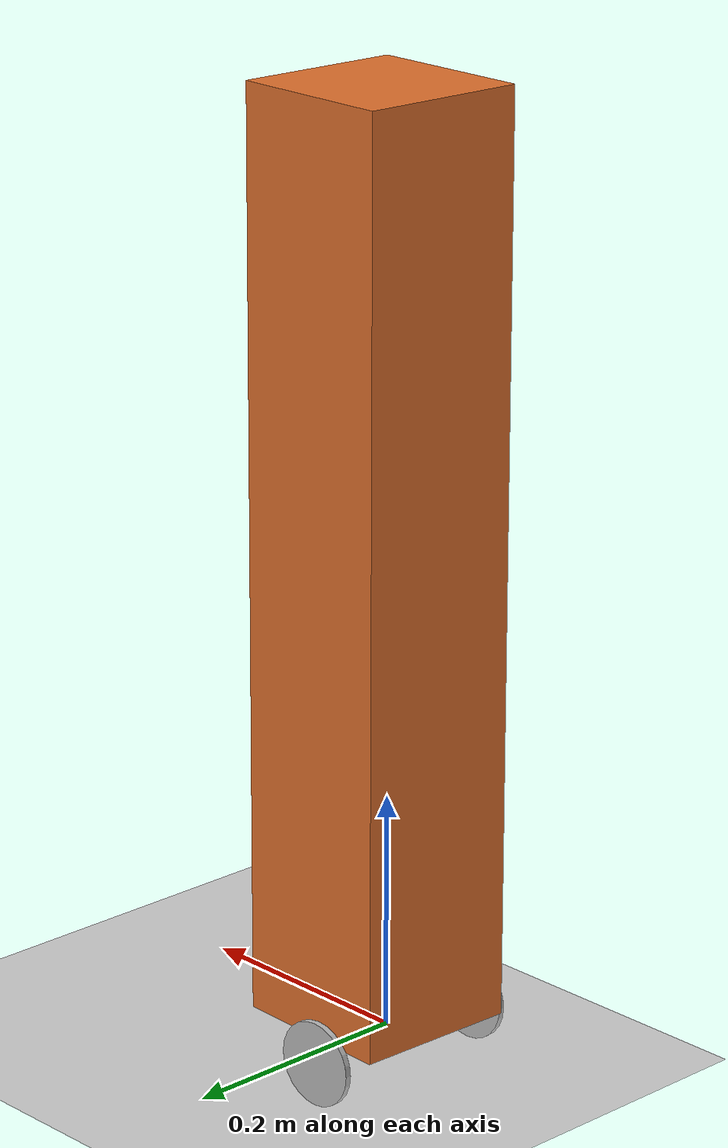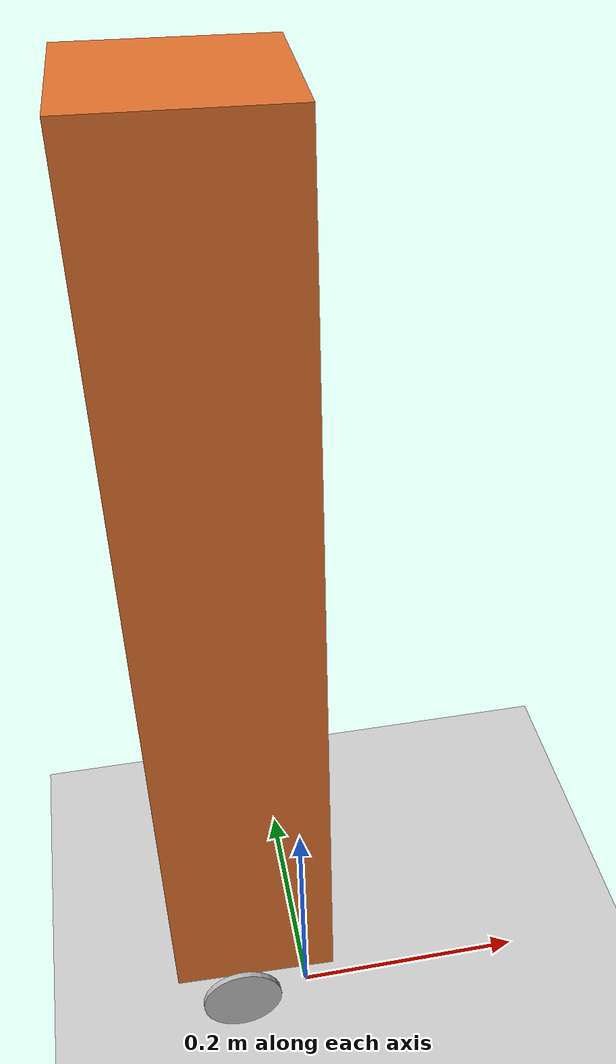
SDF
<sdf version="1.6">
 <world name="default">
  <model name="ground_plane">
   <static>1</static>
   <link name="link">
    <collision name="collision">
     <geometry><plane><normal>0 0 1</normal><size>100 100</size></plane></geometry>
     <surface>
      <contact><collide_bitmask>65535</collide_bitmask></contact>
      <friction><ode><mu>100</mu><mu2>50</mu2></ode></friction>
     </surface>
    </collision>
    <visual name="visual">
     <cast_shadows>0</cast_shadows>
     <geometry><plane><normal>0 0 1</normal><size>100 100</size></plane></geometry>
     <material>
      <script><uri>file://media/materials/scripts/gazebo.material</uri><name>Gazebo/Grey</name></script>
     </material>
    </visual>
   </link>
  </model>
  <model name="kbot_new">
   <link name="base_footprint">
    <inertial>
     <pose>0 0 0.003636 0 -0 0</pose>
     <mass>11</mass>
     <inertia>
      <ixx>0.00359788</ixx>
      <ixy>0</ixy>
      <ixz>0</ixz>
      <iyy>0.00572288</iyy>
      <iyz>0</iyz>
      <izz>0.00214333</izz>
     </inertia>
    </inertial>
    <visual name="base_footprint_visual">
     <geometry><box><size>0.001 0.001 0.001</size></box></geometry>
     <material>
      <shader type="pixel"><normal_map>__default__</normal_map></shader>
      <script>
       <name>ModelPreview_1::base_footprint::base_footprint_visual_MATERIAL_</name>
       <uri>__default__</uri>
      </script>
      <ambient>0 0 0 1</ambient>
      <diffuse>0 0 0 1</diffuse>
      <specular>0 0 0 1</specular>
      <emissive>0 0 0 1</emissive>
     </material>
    </visual>
    <collision name="base_footprint_fixed_joint_lump__base_link_collision">
     <pose>0 0 0.04 0 -0 0</pose>
     <geometry><box><size>0.16 0.16 0.01</size></box></geometry>
     <surface>
      <friction>
       <ode><mu>1</mu><mu2>1</mu2><fdir1>0 0 0</fdir1><slip1>0</slip1><slip2>0</slip2></ode>
       <torsional>
        <coefficient>1</coefficient>
        <patch_radius>0</patch_radius>
        <surface_radius>0</surface_radius>
        <use_patch_radius>1</use_patch_radius>
        <ode><slip>0</slip></ode>
       </torsional>
      </friction>
      <bounce><restitution_coefficient>0</restitution_coefficient><threshold>1e+06</threshold></bounce>
      <contact>
       <collide_without_contact>0</collide_without_contact>
       <collide_without_contact_bitmask>1</collide_without_contact_bitmask>
       <collide_bitmask>1</collide_bitmask>
       <ode>
        <soft_cfm>0</soft_cfm>
        <soft_erp>0.2</soft_erp>
        <kp>1e+13</kp>
        <kd>1</kd>
        <max_vel>0.01</max_vel>
        <min_depth>0</min_depth>
       </ode>
       <bullet>
        <split_impulse>1</split_impulse>
        <split_impulse_penetration_threshold>-0.01</split_impulse_penetration_threshold>
        <soft_cfm>0</soft_cfm>
        <soft_erp>0.2</soft_erp>
        <kp>1e+13</kp>
        <kd>1</kd>
       </bullet>
      </contact>
     </surface>
    </collision>
   </link>
   <link name="caster_wheel">
    <pose>-0.052 0 0.0175 0 -0 0</pose>
    <inertial>
     <mass>1</mass>
     <inertia>
      <ixx>0.0001225</ixx>
      <ixy>0</ixy>
      <ixz>0</ixz>
      <iyy>0.0001225</iyy>
      <iyz>0</iyz>
      <izz>0.0001225</izz>
     </inertia>
    </inertial>
    <visual name="caster_wheel_visual">
     <geometry><sphere><radius>0.0175</radius></sphere></geometry>
     <material><shader type="pixel"/><emissive>0 0 0 1</emissive></material>
    </visual>
    <collision name="caster_wheel_collision">
     <geometry><sphere><radius>0.0175</radius></sphere></geometry>
     <surface>
      <friction>
       <ode><mu>1</mu><mu2>1</mu2><fdir1>0 0 0</fdir1><slip1>0</slip1><slip2>0</slip2></ode>
       <torsional>
        <coefficient>1</coefficient>
        <patch_radius>0</patch_radius>
        <surface_radius>0</surface_radius>
        <use_patch_radius>1</use_patch_radius>
        <ode><slip>0</slip></ode>
       </torsional>
      </friction>
      <bounce><restitution_coefficient>0</restitution_coefficient><threshold>1e+06</threshold></bounce>
      <contact>
       <collide_without_contact>0</collide_without_contact>
       <collide_without_contact_bitmask>1</collide_without_contact_bitmask>
       <collide_bitmask>1</collide_bitmask>
       <ode>
        <soft_cfm>0</soft_cfm>
        <soft_erp>0.2</soft_erp>
        <kp>1e+13</kp>
        <kd>1</kd>
        <max_vel>0.01</max_vel>
        <min_depth>0</min_depth>
       </ode>
       <bullet>
        <split_impulse>1</split_impulse>
        <split_impulse_penetration_threshold>-0.01</split_impulse_penetration_threshold>
        <soft_cfm>0</soft_cfm>
        <soft_erp>0.2</soft_erp>
        <kp>1e+13</kp>
        <kd>1</kd>
       </bullet>
      </contact>
     </surface>
    </collision>
   </link>
   <link name="left_wheel">
    <pose>0.02 0.087 0.035 0 -0 0</pose>
    <inertial>
     <mass>1</mass>
     <inertia>
      <ixx>0.000308333</ixx>
      <ixy>0</ixy>
      <ixz>0</ixz>
      <iyy>0.000308333</iyy>
      <iyz>0</iyz>
      <izz>0.0006125</izz>
     </inertia>
    </inertial>
    <visual name="left_wheel_visual">
     <pose>0 0 0 1.5708 -0 0</pose>
     <geometry><cylinder><length>0.005</length><radius>0.035</radius></cylinder></geometry>
     <material><shader type="pixel"/><emissive>0 0 0 1</emissive></material>
    </visual>
    <collision name="left_wheel_collision">
     <pose>0 0 0 1.5708 -0 0</pose>
     <geometry><cylinder><radius>0.035</radius><length>0.005</length></cylinder></geometry>
     <surface>
      <friction>
       <ode><mu>1</mu><mu2>1</mu2><fdir1>0 0 0</fdir1><slip1>0</slip1><slip2>0</slip2></ode>
       <torsional>
        <coefficient>1</coefficient>
        <patch_radius>0</patch_radius>
        <surface_radius>0</surface_radius>
        <use_patch_radius>1</use_patch_radius>
        <ode><slip>0</slip></ode>
       </torsional>
      </friction>
      <bounce><restitution_coefficient>0</restitution_coefficient><threshold>1e+06</threshold></bounce>
      <contact>
       <collide_without_contact>0</collide_without_contact>
       <collide_without_contact_bitmask>1</collide_without_contact_bitmask>
       <collide_bitmask>1</collide_bitmask>
       <ode>
        <soft_cfm>0</soft_cfm>
        <soft_erp>0.2</soft_erp>
        <kp>1e+13</kp>
        <kd>1</kd>
        <max_vel>0.01</max_vel>
        <min_depth>0</min_depth>
       </ode>
       <bullet>
        <split_impulse>1</split_impulse>
        <split_impulse_penetration_threshold>-0.01</split_impulse_penetration_threshold>
        <soft_cfm>0</soft_cfm>
        <soft_erp>0.2</soft_erp>
        <kp>1e+13</kp>
        <kd>1</kd>
       </bullet>
      </contact>
     </surface>
    </collision>
   </link>
   <link name="link_1">
    <inertial>
     <mass>0.303947</mass>
     <inertia>
      <ixx>0.0276699</ixx>
      <ixy>0</ixy>
      <ixz>0</ixz>
      <iyy>0.0506579</iyy>
      <iyz>0</iyz>
      <izz>0.0276699</izz>
     </inertia>
    </inertial>
    <pose>-0 0 0.42 0 -0 3.07913</pose>
    <visual name="visual">
     <geometry><box><size>0.14 0.14 0.75</size></box></geometry>
     <material>
      <lighting>1</lighting>
      <script><uri>file://media/materials/scripts/gazebo.material</uri><name>Gazebo/Grey</name></script>
      <shader type="pixel"><normal_map>__default__</normal_map></shader>
      <ambient>0.875 0.439 0.176 1</ambient>
      <diffuse>0.7 0.7 0.7 1</diffuse>
      <specular>0.01 0.01 0.01 1</specular>
      <emissive>0 0 0 1</emissive>
     </material>
    </visual>
    <collision name="collision">
     <geometry><box><size>0.12 0.12 0.75</size></box></geometry>
     <surface>
      <friction>
       <ode><mu>1</mu><mu2>1</mu2><fdir1>0 0 0</fdir1><slip1>0</slip1><slip2>0</slip2></ode>
       <torsional>
        <coefficient>1</coefficient>
        <patch_radius>0</patch_radius>
        <surface_radius>0</surface_radius>
        <use_patch_radius>1</use_patch_radius>
        <ode><slip>0</slip></ode>
       </torsional>
      </friction>
      <bounce><restitution_coefficient>0</restitution_coefficient><threshold>1e+06</threshold></bounce>
      <contact>
       <collide_without_contact>0</collide_without_contact>
       <collide_without_contact_bitmask>1</collide_without_contact_bitmask>
       <collide_bitmask>1</collide_bitmask>
       <ode>
        <soft_cfm>0</soft_cfm>
        <soft_erp>0.2</soft_erp>
        <kp>1e+13</kp>
        <kd>1</kd>
        <max_vel>0.01</max_vel>
        <min_depth>0</min_depth>
       </ode>
       <bullet>
        <split_impulse>1</split_impulse>
        <split_impulse_penetration_threshold>-0.01</split_impulse_penetration_threshold>
        <soft_cfm>0</soft_cfm>
        <soft_erp>0.2</soft_erp>
        <kp>1e+13</kp>
        <kd>1</kd>
       </bullet>
      </contact>
     </surface>
    </collision>
   </link>
   <link name="right_wheel">
    <pose>0.02 -0.087 0.035 0 -0 0</pose>
    <inertial>
     <mass>1</mass>
     <inertia>
      <ixx>0.000308333</ixx>
      <ixy>0</ixy>
      <ixz>0</ixz>
      <iyy>0.000308333</iyy>
      <iyz>0</iyz>
      <izz>0.0006125</izz>
     </inertia>
    </inertial>
    <visual name="right_wheel_visual">
     <pose>0 0 0 1.5708 -0 0</pose>
     <geometry><cylinder><length>0.005</length><radius>0.035</radius></cylinder></geometry>
     <material><shader type="pixel"/></material>
    </visual>
    <collision name="right_wheel_collision">
     <pose>0 0 0 1.5708 -0 0</pose>
     <geometry><cylinder><radius>0.035</radius><length>0.005</length></cylinder></geometry>
     <surface>
      <friction>
       <ode><mu>1</mu><mu2>1</mu2><fdir1>0 0 0</fdir1><slip1>0</slip1><slip2>0</slip2></ode>
       <torsional>
        <coefficient>1</coefficient>
        <patch_radius>0</patch_radius>
        <surface_radius>0</surface_radius>
        <use_patch_radius>1</use_patch_radius>
        <ode><slip>0</slip></ode>
       </torsional>
      </friction>
      <bounce><restitution_coefficient>0</restitution_coefficient><threshold>1e+06</threshold></bounce>
      <contact>
       <collide_without_contact>0</collide_without_contact>
       <collide_without_contact_bitmask>1</collide_without_contact_bitmask>
       <collide_bitmask>1</collide_bitmask>
       <ode>
        <soft_cfm>0</soft_cfm>
        <soft_erp>0.2</soft_erp>
        <kp>1e+13</kp>
        <kd>1</kd>
        <max_vel>0.01</max_vel>
        <min_depth>0</min_depth>
       </ode>
       <bullet>
        <split_impulse>1</split_impulse>
        <split_impulse_penetration_threshold>-0.01</split_impulse_penetration_threshold>
        <soft_cfm>0</soft_cfm>
        <soft_erp>0.2</soft_erp>
        <kp>1e+13</kp>
        <kd>1</kd>
       </bullet>
      </contact>
     </surface>
    </collision>
   </link>
   <joint name="base_footprint_JOINT_2" type="fixed">
    <parent>base_footprint</parent>
    <child>link_1</child>
    <physics>
     <ode><limit><cfm>0</cfm><erp>0.2</erp></limit><suspension><cfm>0</cfm><erp>0.2</erp></suspension></ode>
    </physics>
   </joint>
   <joint name="caster_wheel_joint" type="revolute">
    <parent>base_footprint</parent>
    <child>caster_wheel</child>
    <axis>
     <xyz>0 1 0</xyz>
     <use_parent_model_frame>1</use_parent_model_frame>
     <limit><lower>-1e+16</lower><upper>1e+16</upper><effort>-1</effort><velocity>-1</velocity></limit>
     <dynamics>
      <spring_reference>0</spring_reference>
      <spring_stiffness>0</spring_stiffness>
      <damping>0</damping>
      <friction>0</friction>
     </dynamics>
    </axis>
    <physics>
     <ode><limit><cfm>0</cfm><erp>0.2</erp></limit><suspension><cfm>0</cfm><erp>0.2</erp></suspension></ode>
    </physics>
   </joint>
   <joint name="left_wheel_joint" type="revolute">
    <parent>base_footprint</parent>
    <child>left_wheel</child>
    <axis>
     <xyz>0 1 0</xyz>
     <use_parent_model_frame>1</use_parent_model_frame>
     <limit><lower>-1e+16</lower><upper>1e+16</upper><effort>-1</effort><velocity>-1</velocity></limit>
     <dynamics>
      <spring_reference>0</spring_reference>
      <spring_stiffness>0</spring_stiffness>
      <damping>0</damping>
      <friction>0</friction>
     </dynamics>
    </axis>
    <physics>
     <ode><limit><cfm>0</cfm><erp>0.2</erp></limit><suspension><cfm>0</cfm><erp>0.2</erp></suspension></ode>
    </physics>
   </joint>
   <joint name="right_wheel_joint" type="revolute">
    <parent>base_footprint</parent>
    <child>right_wheel</child>
    <axis>
     <xyz>0 1 0</xyz>
     <use_parent_model_frame>1</use_parent_model_frame>
     <limit><lower>-1e+16</lower><upper>1e+16</upper><effort>-1</effort><velocity>-1</velocity></limit>
     <dynamics>
      <spring_reference>0</spring_reference>
      <spring_stiffness>0</spring_stiffness>
      <damping>0</damping>
      <friction>0</friction>
     </dynamics>
    </axis>
    <physics>
     <ode><limit><cfm>0</cfm><erp>0.2</erp></limit><suspension><cfm>0</cfm><erp>0.2</erp></suspension></ode>
    </physics>
   </joint>
   <static>0</static>
   <plugin name="differential_drive_controller" filename="libgazebo_ros_diff_drive.so">
    <alwaysOn>0</alwaysOn>
    <legacyMode>0</legacyMode>
    <updateRate>20</updateRate>
    <leftJoint>left_wheel_joint</leftJoint>
    <rightJoint>right_wheel_joint</rightJoint>
    <wheelSeparation>0.15</wheelSeparation>
    <wheelDiameter>0.07</wheelDiameter>
    <torque>20</torque>
    <commandTopic>/kbot/base_controller/cmd_vel</commandTopic>
    <odometryTopic>/kbot/base_controller/odom</odometryTopic>
    <odometryFrame>odom</odometryFrame>
    <robotBaseFrame>base_footprint</robotBaseFrame>
    <robotNamespace>/</robotNamespace>
   </plugin>
   <pose>-0.044619 0.053902 -2e-06 3e-05 6.4e-05 -3.11459</pose>
  </model>
 </world>
</sdf>
